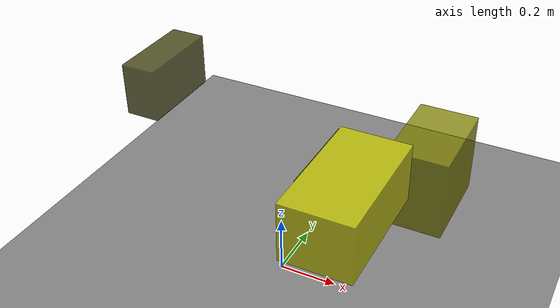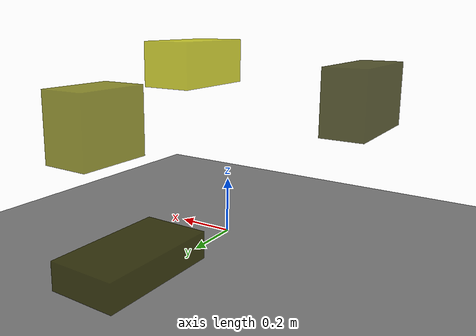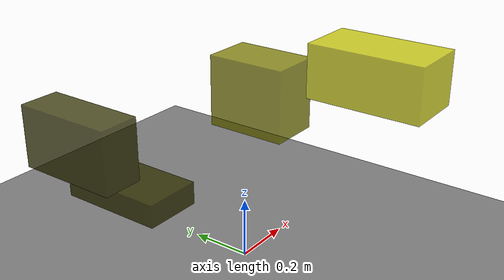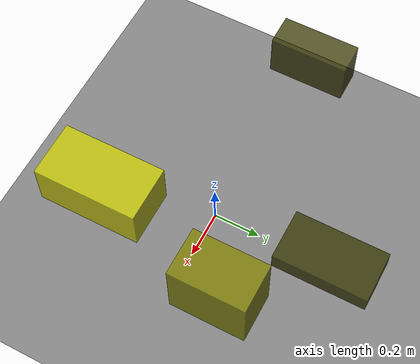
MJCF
<?xml version="1.0"?>
<mujoco model="obstacle_scene">
  <compiler angle="radian" coordinate="local"/>
  <option timestep="0.001" gravity="0 0 -9.81"/>

  <asset>
    <material name="obstacle_mat" rgba="0.8 0.8 0.0 0.8"/>
    <material name="ground_mat" rgba="0.5 0.5 0.5 1"/>
  </asset>

  <worldbody>
    <!-- Ground plane -->
    <geom name="ground" type="plane" size="3 3 0.1" material="ground_mat"/>

    <!-- Obstacles -->
    <body name="obstacle_0" pos="-0.000947 0.513776 0.083381">
      <geom name="obs_0" type="box" size="0.110812 0.203479 0.043809" rgba="0.2 0.2 0.0 0.8"/>
    </body>
    <body name="obstacle_1" pos="0.418449 0.239756 0.394363">
      <geom name="obs_1" type="box" size="0.097864 0.154264 0.136249" rgba="0.5 0.5 0.0 0.8"/>
    </body>
    <body name="obstacle_2" pos="0.342078 -0.269570 0.589219">
      <geom name="obs_2" type="box" size="0.106992 0.198312 0.092253" rgba="0.8 0.8 0.0 0.8"/>
    </body>
    <body name="obstacle_3" pos="-0.525446 0.151463 0.555530">
      <geom name="obs_3" type="box" size="0.059992 0.151068 0.091448" rgba="0.2 0.2 0.0 0.8"/>
    </body>
  </worldbody>
</mujoco>
